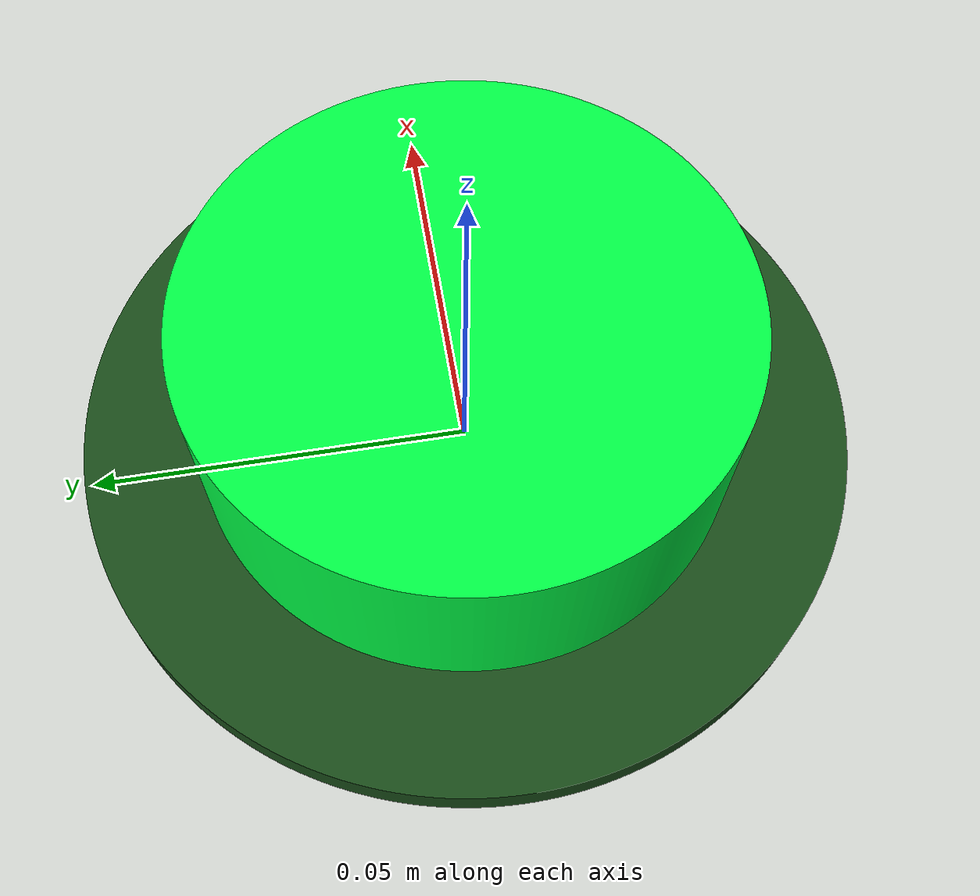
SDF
<?xml version="1.0" ?>
<sdf version="1.4">
  <model name="simple_push_button">
    <!-- The base is just a cylinder -->
    <link name="base">
      <pose>0 0 0.0 0 0 0</pose>
      <inertial>
        <mass>5</mass>
        <inertia>
          <ixx>0.0500104166667</ixx>
          <iyy>0.0500104166667</iyy>
          <izz>0.1</izz>
          <ixy>0</ixy>
          <ixz>0</ixz>
          <iyz>0</iyz>
        </inertia>
      </inertial>
      <collision name="base_collision">
        <geometry>
          <mesh>
              <uri>model://DREAM_simple_button/meshes/base_button.dae</uri>
          </mesh>
        </geometry>
        <surface>
          <friction>
            <ode>
              <mu>0.6</mu>
              <mu2>0.6</mu2>
            </ode>
          </friction>
        </surface>
      </collision>
      <visual name="base_visual">
        <geometry>
          <mesh>
              <uri>model://DREAM_simple_button/meshes/base_button.dae</uri>
          </mesh>
        </geometry>
        <material>
          <diffuse>0.1 0.3 0.1 1</diffuse>
          <ambient>0.1 0.15 0.1 1</ambient>
          <specular>0.5 0.6 0.5 1</specular>
          <emissive>0 0 0 0</emissive>
        </material>
        <plugin name="color_plugin" filename="libDREAM_change_color.so"/>
      </visual>
    </link>

    <link name="button">
      <!-- Offset by the height of the base -->
      <pose>0 0 0.005 0 0 0</pose>
      <inertial>
        <mass>0.1</mass>
        <inertia>
          <ixx>0.0008175</ixx>
          <iyy>0.0008175</iyy>
          <izz>0.00162</izz>
          <ixy>0</ixy>
          <ixz>0</ixz>
          <iyz>0</iyz>
        </inertia>
      </inertial>

      <collision name="button_collision">
        <geometry>
          <mesh>
              <uri>model://DREAM_simple_button/meshes/button.dae</uri>
          </mesh>
        </geometry>
        <surface>
          <friction>
            <ode>
              <mu>0.6</mu>
              <mu2>0.6</mu2>
            </ode>
          </friction>
        </surface>
      </collision>
      <visual name="button_visual">
        <geometry>
          <mesh>
              <uri>model://DREAM_simple_button/meshes/button.dae</uri>
          </mesh>
        </geometry>
        <material>
          <diffuse>0 1 0.274 1</diffuse>
          <ambient>0.7 0.9 0.7 1</ambient>
          <specular>0.7 0.9 0.7 1</specular>
          <emissive>0 0 0 0</emissive>
        </material>
        <plugin name="color_plugin" filename="libDREAM_change_color.so"/>
      </visual>
    </link>

    <joint type="prismatic" name="glider">
      <!-- Position the joint at the bottom of the button -->
      <pose>0 0 0 0 0 0</pose>
      <parent>base</parent>
      <child>button</child>
      <!-- The axis defines the joint's degree of freedom -->
      <axis>
        <!-- z-axis -->
        <xyz>0 0 1</xyz>
        <!-- Limit refers to the range of motion of the joint -->
        <limit>
          <lower>0</lower>
          <upper>0.01</upper>
        </limit>
      </axis>
    </joint>

    <plugin name="push_button" filename="libDREAM_button_spring.so"/>
    <plugin name="sensor" filename="libDREAM_button_sensor.so"/>
    <plugin name="mesh_box" filename="libDREAM_mesh_box.so"/>
  </model>
</sdf>
